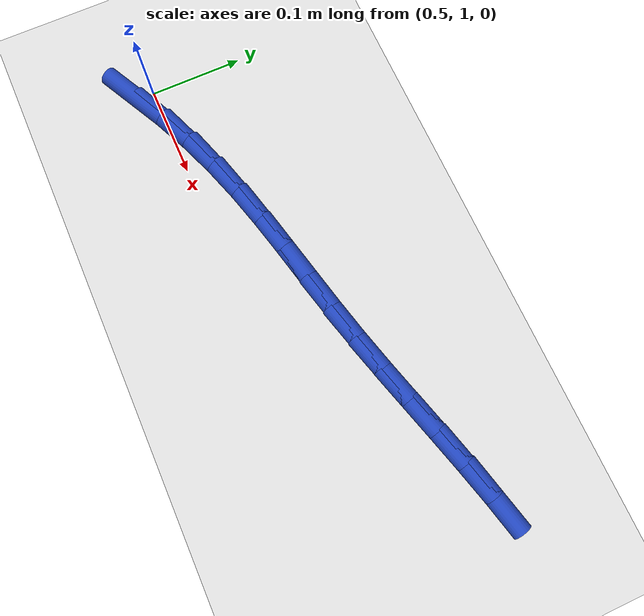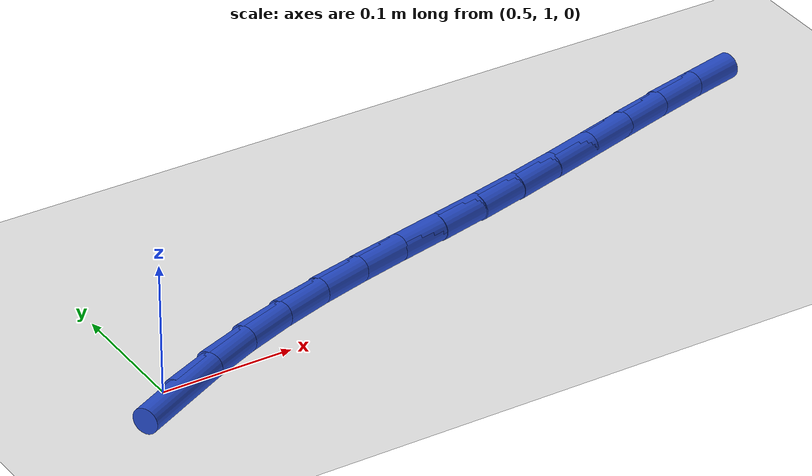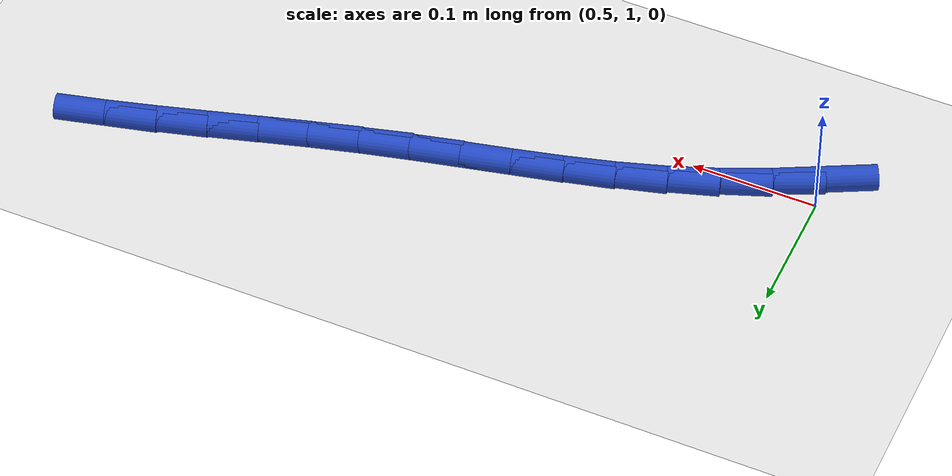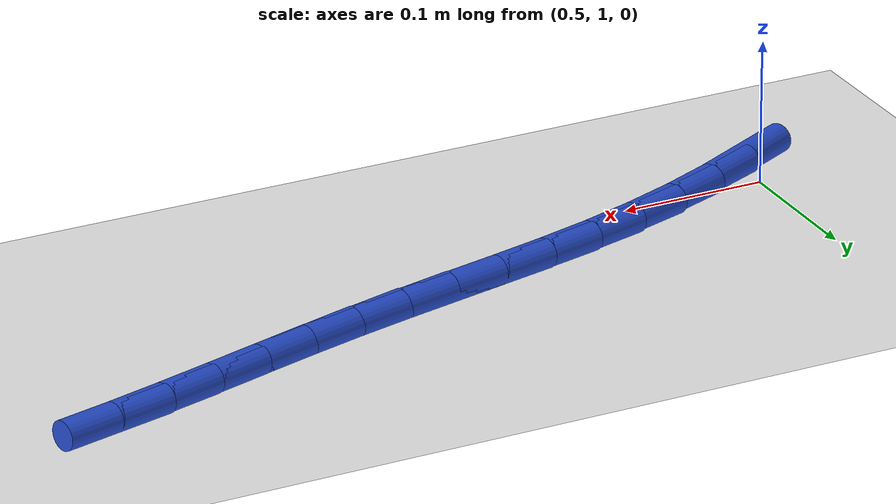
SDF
<sdf version="1.6">
 <world name="default">
  <model name="ground_plane">
   <static>1</static>
   <link name="link">
    <collision name="collision">
     <geometry><plane><normal>0 0 1</normal><size>100 100</size></plane></geometry>
     <surface><friction><ode><mu>100</mu><mu2>50</mu2></ode></friction></surface>
    </collision>
    <visual name="visual">
     <cast_shadows>0</cast_shadows>
     <geometry><plane><normal>0 0 1</normal><size>100 100</size></plane></geometry>
     <material>
      <script><uri>file://media/materials/scripts/gazebo.material</uri><name>Gazebo/WhiteGlow</name></script>
     </material>
    </visual>
   </link>
  </model>
  <model name="line">
   <link name="link_29">
    <pose>0.5009852517778299 0.9804052242650584 0.01 0 1.57 0.47109757847331624</pose>
    <collision name="collision">
     <geometry><cylinder><radius>0.01</radius><length>0.08</length></cylinder></geometry>
    </collision>
    <visual name="visual">
     <material>
      <script><name>Gazebo/Blue</name><uri>file://media/materials/scripts/gazebo.material</uri></script>
     </material>
     <geometry><cylinder><radius>0.01</radius><length>0.08</length></cylinder></geometry>
    </visual>
   </link>
   <link name="link_30">
    <pose>0.536410511436798 0.998448990076052 0.01 0 1.57 0.41856701039395044</pose>
    <collision name="collision">
     <geometry><cylinder><radius>0.01</radius><length>0.08</length></cylinder></geometry>
    </collision>
    <visual name="visual">
     <material>
      <script><name>Gazebo/Blue</name><uri>file://media/materials/scripts/gazebo.material</uri></script>
     </material>
     <geometry><cylinder><radius>0.01</radius><length>0.08</length></cylinder></geometry>
    </visual>
   </link>
   <link name="link_31">
    <pose>0.5726308949286207 1.0145618043490008 0.01 0 1.57 0.3649141724647435</pose>
    <collision name="collision">
     <geometry><cylinder><radius>0.01</radius><length>0.08</length></cylinder></geometry>
    </collision>
    <visual name="visual">
     <material>
      <script><name>Gazebo/Blue</name><uri>file://media/materials/scripts/gazebo.material</uri></script>
     </material>
     <geometry><cylinder><radius>0.01</radius><length>0.08</length></cylinder></geometry>
    </visual>
   </link>
   <link name="link_32">
    <pose>0.6095308909297883 1.028658477419715 0.01 0 1.57 0.31117854952049984</pose>
    <collision name="collision">
     <geometry><cylinder><radius>0.01</radius><length>0.08</length></cylinder></geometry>
    </collision>
    <visual name="visual">
     <material>
      <script><name>Gazebo/Blue</name><uri>file://media/materials/scripts/gazebo.material</uri></script>
     </material>
     <geometry><cylinder><radius>0.01</radius><length>0.08</length></cylinder></geometry>
    </visual>
   </link>
   <link name="link_33">
    <pose>0.6469924354882246 1.0407071394653227 0.01 0 1.57 0.26738921731400006</pose>
    <collision name="collision">
     <geometry><cylinder><radius>0.01</radius><length>0.08</length></cylinder></geometry>
    </collision>
    <visual name="visual">
     <material>
      <script><name>Gazebo/Blue</name><uri>file://media/materials/scripts/gazebo.material</uri></script>
     </material>
     <geometry><cylinder><radius>0.01</radius><length>0.08</length></cylinder></geometry>
    </visual>
   </link>
   <link name="link_34">
    <pose>0.6848778409965444 1.0510858236943426 0.01 0 1.57 0.23846284457718867</pose>
    <collision name="collision">
     <geometry><cylinder><radius>0.01</radius><length>0.08</length></cylinder></geometry>
    </collision>
    <visual name="visual">
     <material>
      <script><name>Gazebo/Blue</name><uri>file://media/materials/scripts/gazebo.material</uri></script>
     </material>
     <geometry><cylinder><radius>0.01</radius><length>0.08</length></cylinder></geometry>
    </visual>
   </link>
   <link name="link_35">
    <pose>0.7230403187919666 1.0603626680708635 0.01 0 1.57 0.22450182062747284</pose>
    <collision name="collision">
     <geometry><cylinder><radius>0.01</radius><length>0.08</length></cylinder></geometry>
    </collision>
    <visual name="visual">
     <material>
      <script><name>Gazebo/Blue</name><uri>file://media/materials/scripts/gazebo.material</uri></script>
     </material>
     <geometry><cylinder><radius>0.01</radius><length>0.08</length></cylinder></geometry>
    </visual>
   </link>
   <link name="link_36">
    <pose>0.7613330303091386 1.0691068529343584 0.01 0 1.57 0.2255025990860086</pose>
    <collision name="collision">
     <geometry><cylinder><radius>0.01</radius><length>0.08</length></cylinder></geometry>
    </collision>
    <visual name="visual">
     <material>
      <script><name>Gazebo/Blue</name><uri>file://media/materials/scripts/gazebo.material</uri></script>
     </material>
     <geometry><cylinder><radius>0.01</radius><length>0.08</length></cylinder></geometry>
    </visual>
   </link>
   <link name="link_37">
    <pose>0.7996091369827074 1.0778875586243009 0.01 0 1.57 0.241440266440755</pose>
    <collision name="collision">
     <geometry><cylinder><radius>0.01</radius><length>0.08</length></cylinder></geometry>
    </collision>
    <visual name="visual">
     <material>
      <script><name>Gazebo/Blue</name><uri>file://media/materials/scripts/gazebo.material</uri></script>
     </material>
     <geometry><cylinder><radius>0.01</radius><length>0.08</length></cylinder></geometry>
    </visual>
   </link>
   <link name="link_38">
    <pose>0.8377221427799659 1.0872726485000026 0.01 0 1.57 0.26519665062997594</pose>
    <collision name="collision">
     <geometry><cylinder><radius>0.01</radius><length>0.08</length></cylinder></geometry>
    </collision>
    <visual name="visual">
     <material>
      <script><name>Gazebo/Blue</name><uri>file://media/materials/scripts/gazebo.material</uri></script>
     </material>
     <geometry><cylinder><radius>0.01</radius><length>0.08</length></cylinder></geometry>
    </visual>
   </link>
   <link name="link_39">
    <pose>0.8755960423897138 1.0975589610039074 0.01 0 1.57 0.2809432589860825</pose>
    <collision name="collision">
     <geometry><cylinder><radius>0.01</radius><length>0.08</length></cylinder></geometry>
    </collision>
    <visual name="visual">
     <material>
      <script><name>Gazebo/Blue</name><uri>file://media/materials/scripts/gazebo.material</uri></script>
     </material>
     <geometry><cylinder><radius>0.01</radius><length>0.08</length></cylinder></geometry>
    </visual>
   </link>
   <link name="link_40">
    <pose>0.9133110730595467 1.108442608332455 0.01 0 1.57 0.28655785855542054</pose>
    <collision name="collision">
     <geometry><cylinder><radius>0.01</radius><length>0.08</length></cylinder></geometry>
    </collision>
    <visual name="visual">
     <material>
      <script><name>Gazebo/Blue</name><uri>file://media/materials/scripts/gazebo.material</uri></script>
     </material>
     <geometry><cylinder><radius>0.01</radius><length>0.08</length></cylinder></geometry>
    </visual>
   </link>
   <link name="link_41">
    <pose>0.9509684537262798 1.1195390316312674 0.01 0 1.57 0.2820461383885123</pose>
    <collision name="collision">
     <geometry><cylinder><radius>0.01</radius><length>0.08</length></cylinder></geometry>
    </collision>
    <visual name="visual">
     <material>
      <script><name>Gazebo/Blue</name><uri>file://media/materials/scripts/gazebo.material</uri></script>
     </material>
     <geometry><cylinder><radius>0.01</radius><length>0.08</length></cylinder></geometry>
    </visual>
   </link>
   <link name="link_42">
    <pose>0.9886694033267295 1.1304636720459682 0.01 0 1.57 0.2674010513809448</pose>
    <collision name="collision">
     <geometry><cylinder><radius>0.01</radius><length>0.08</length></cylinder></geometry>
    </collision>
    <visual name="visual">
     <material>
      <script><name>Gazebo/Blue</name><uri>file://media/materials/scripts/gazebo.material</uri></script>
     </material>
     <geometry><cylinder><radius>0.01</radius><length>0.08</length></cylinder></geometry>
    </visual>
   </link>
   <link name="link_43">
    <pose>1.0265151407977111 1.1408319707221803 0.01 0 1.57 0.24261670688565298</pose>
    <collision name="collision">
     <geometry><cylinder><radius>0.01</radius><length>0.08</length></cylinder></geometry>
    </collision>
    <visual name="visual">
     <material>
      <script><name>Gazebo/Blue</name><uri>file://media/materials/scripts/gazebo.material</uri></script>
     </material>
     <geometry><cylinder><radius>0.01</radius><length>0.08</length></cylinder></geometry>
    </visual>
   </link>
  </model>
 </world>
</sdf>
